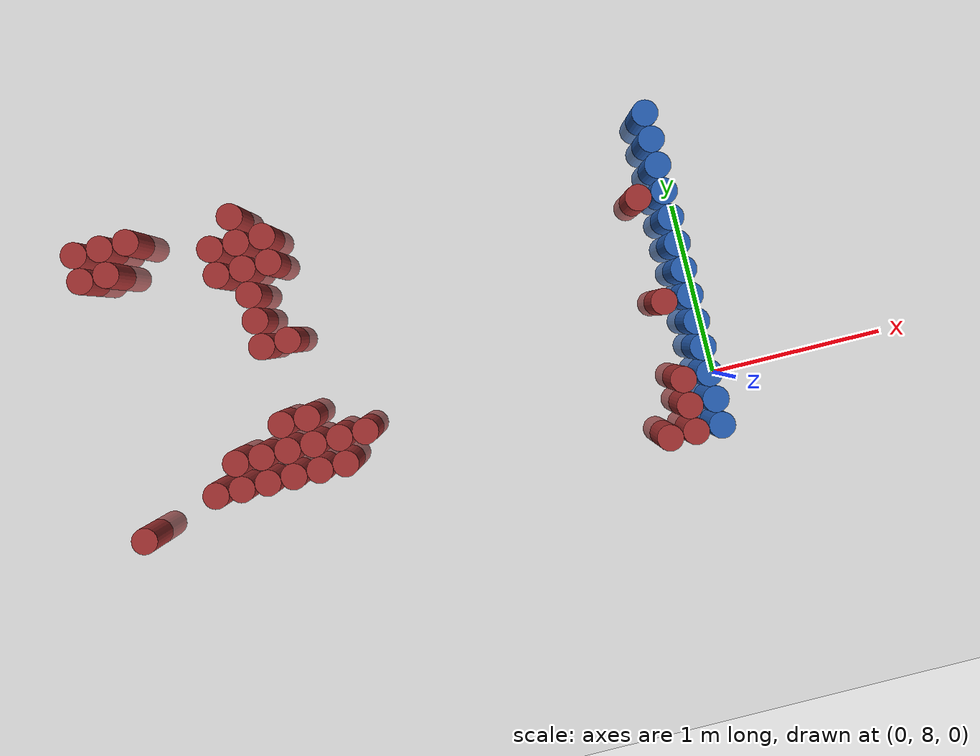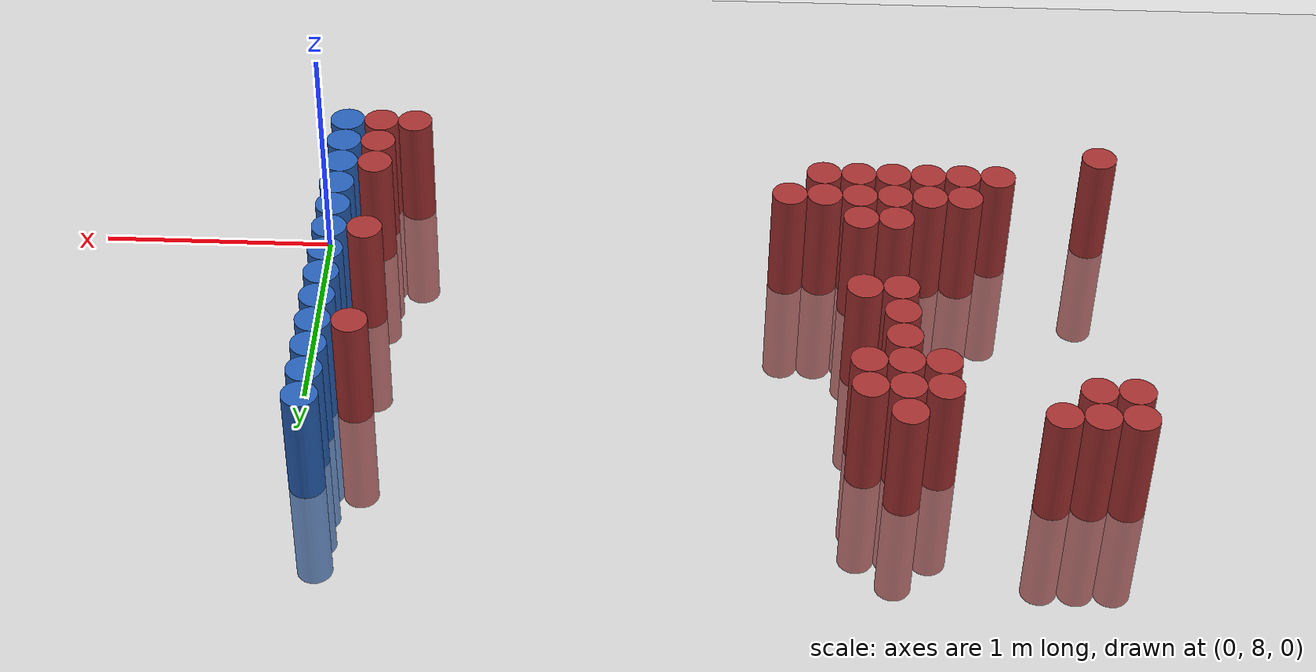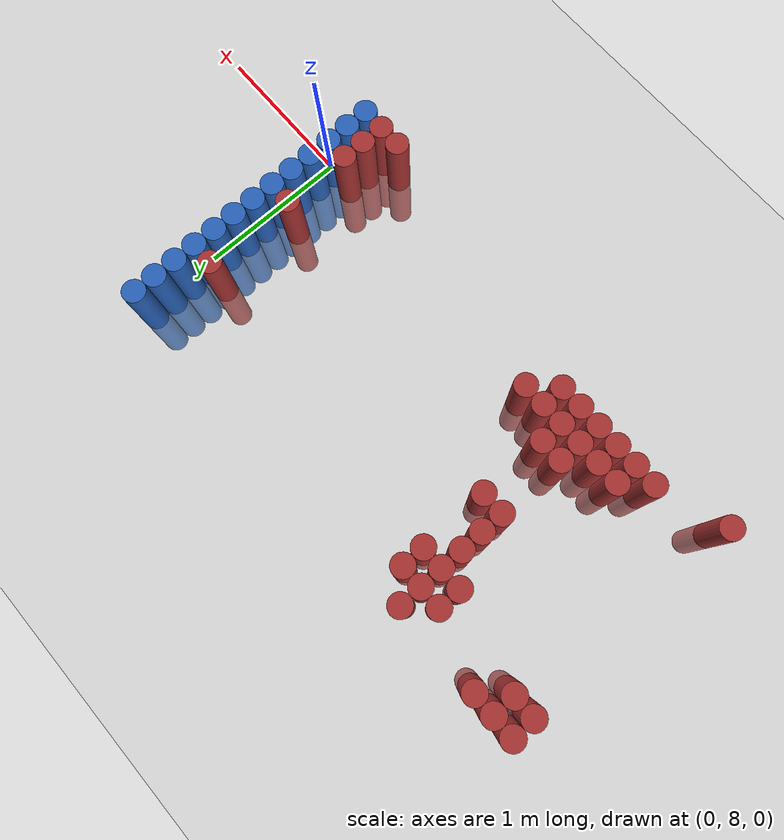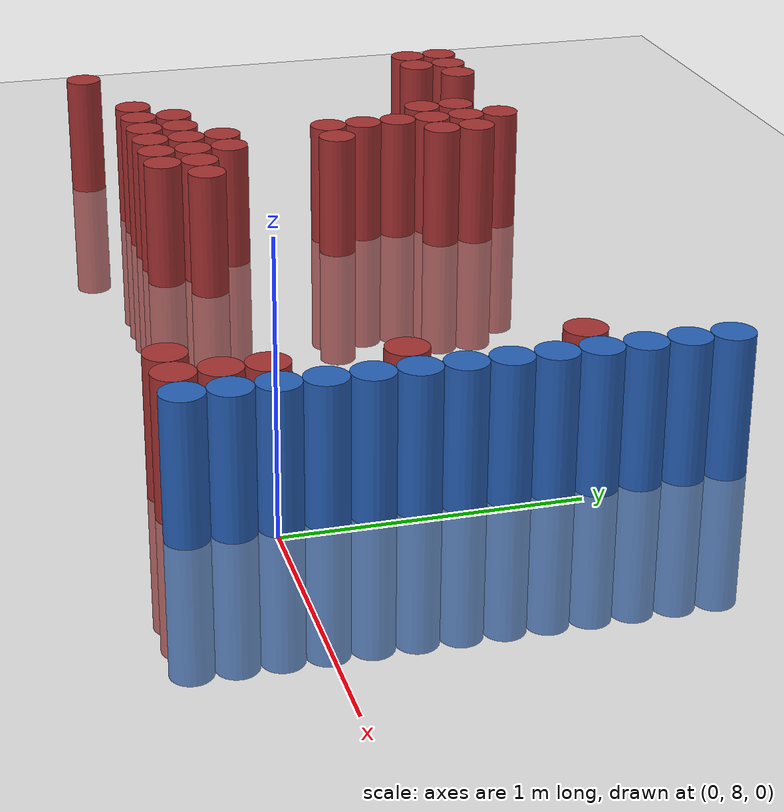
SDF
<sdf version="1.6">
 <world name="default">
  <model name="ground_plane">
   <static>1</static>
   <link name="link">
    <collision name="collision">
     <geometry><plane><normal>0 0 1</normal><size>100 100</size></plane></geometry>
     <surface><friction><ode><mu>100</mu><mu2>50</mu2></ode></friction></surface>
    </collision>
    <visual name="visual">
     <cast_shadows>0</cast_shadows>
     <geometry><plane><normal>0 0 1</normal><size>100 100</size></plane></geometry>
     <material>
      <script><uri>file://media/materials/scripts/gazebo.material</uri><name>Gazebo/Grey</name></script>
     </material>
    </visual>
   </link>
  </model>
  <model name="unit_cylinder_172">
   <static>1</static>
   <pose>-3.375000 7.875000 0.000000 0.000000 0.000000 0.000000</pose>
   <link name="link">
    <inertial>
     <mass>1</mass>
     <inertia><ixx>0.145833</ixx><ixy>0</ixy><ixz>0</ixz><iyy>0.145833</iyy><iyz>0</iyz><izz>0.125</izz></inertia>
    </inertial>
    <collision name="collision">
     <geometry><cylinder><radius>0.075000</radius><length>1</length></cylinder></geometry>
    </collision>
    <visual name="visual">
     <geometry><cylinder><radius>0.075000</radius><length>1</length></cylinder></geometry>
     <material>
      <ambient>0.648000 0.192000 0.192000 1</ambient>
      <diffuse>0.648000 0.192000 0.192000 1</diffuse>
     </material>
     <material>
      <script><name>Gazebo/Grey</name><uri>file://media/materials/scripts/gazebo.material</uri></script>
     </material>
    </visual>
   </link>
  </model>
  <model name="unit_cylinder_173">
   <static>1</static>
   <pose>-3.375000 9.375000 0.000000 0.000000 0.000000 0.000000</pose>
   <link name="link">
    <inertial>
     <mass>1</mass>
     <inertia><ixx>0.145833</ixx><ixy>0</ixy><ixz>0</ixz><iyy>0.145833</iyy><iyz>0</iyz><izz>0.125</izz></inertia>
    </inertial>
    <collision name="collision">
     <geometry><cylinder><radius>0.075000</radius><length>1</length></cylinder></geometry>
    </collision>
    <visual name="visual">
     <geometry><cylinder><radius>0.075000</radius><length>1</length></cylinder></geometry>
     <material>
      <ambient>0.648000 0.192000 0.192000 1</ambient>
      <diffuse>0.648000 0.192000 0.192000 1</diffuse>
     </material>
     <material>
      <script><name>Gazebo/Grey</name><uri>file://media/materials/scripts/gazebo.material</uri></script>
     </material>
    </visual>
   </link>
  </model>
  <model name="unit_cylinder_174">
   <static>1</static>
   <pose>-3.375000 9.525000 0.000000 0.000000 0.000000 0.000000</pose>
   <link name="link">
    <inertial>
     <mass>1</mass>
     <inertia><ixx>0.145833</ixx><ixy>0</ixy><ixz>0</ixz><iyy>0.145833</iyy><iyz>0</iyz><izz>0.125</izz></inertia>
    </inertial>
    <collision name="collision">
     <geometry><cylinder><radius>0.075000</radius><length>1</length></cylinder></geometry>
    </collision>
    <visual name="visual">
     <geometry><cylinder><radius>0.075000</radius><length>1</length></cylinder></geometry>
     <material>
      <ambient>0.648000 0.192000 0.192000 1</ambient>
      <diffuse>0.648000 0.192000 0.192000 1</diffuse>
     </material>
     <material>
      <script><name>Gazebo/Grey</name><uri>file://media/materials/scripts/gazebo.material</uri></script>
     </material>
    </visual>
   </link>
  </model>
  <model name="unit_cylinder_180">
   <static>1</static>
   <pose>-3.225000 9.375000 0.000000 0.000000 0.000000 0.000000</pose>
   <link name="link">
    <inertial>
     <mass>1</mass>
     <inertia><ixx>0.145833</ixx><ixy>0</ixy><ixz>0</ixz><iyy>0.145833</iyy><iyz>0</iyz><izz>0.125</izz></inertia>
    </inertial>
    <collision name="collision">
     <geometry><cylinder><radius>0.075000</radius><length>1</length></cylinder></geometry>
    </collision>
    <visual name="visual">
     <geometry><cylinder><radius>0.075000</radius><length>1</length></cylinder></geometry>
     <material>
      <ambient>0.648000 0.192000 0.192000 1</ambient>
      <diffuse>0.648000 0.192000 0.192000 1</diffuse>
     </material>
     <material>
      <script><name>Gazebo/Grey</name><uri>file://media/materials/scripts/gazebo.material</uri></script>
     </material>
    </visual>
   </link>
  </model>
  <model name="unit_cylinder_181">
   <static>1</static>
   <pose>-3.225000 9.525000 0.000000 0.000000 0.000000 0.000000</pose>
   <link name="link">
    <inertial>
     <mass>1</mass>
     <inertia><ixx>0.145833</ixx><ixy>0</ixy><ixz>0</ixz><iyy>0.145833</iyy><iyz>0</iyz><izz>0.125</izz></inertia>
    </inertial>
    <collision name="collision">
     <geometry><cylinder><radius>0.075000</radius><length>1</length></cylinder></geometry>
    </collision>
    <visual name="visual">
     <geometry><cylinder><radius>0.075000</radius><length>1</length></cylinder></geometry>
     <material>
      <ambient>0.648000 0.192000 0.192000 1</ambient>
      <diffuse>0.648000 0.192000 0.192000 1</diffuse>
     </material>
     <material>
      <script><name>Gazebo/Grey</name><uri>file://media/materials/scripts/gazebo.material</uri></script>
     </material>
    </visual>
   </link>
  </model>
  <model name="unit_cylinder_189">
   <static>1</static>
   <pose>-3.075000 9.525000 0.000000 0.000000 0.000000 0.000000</pose>
   <link name="link">
    <inertial>
     <mass>1</mass>
     <inertia><ixx>0.145833</ixx><ixy>0</ixy><ixz>0</ixz><iyy>0.145833</iyy><iyz>0</iyz><izz>0.125</izz></inertia>
    </inertial>
    <collision name="collision">
     <geometry><cylinder><radius>0.075000</radius><length>1</length></cylinder></geometry>
    </collision>
    <visual name="visual">
     <geometry><cylinder><radius>0.075000</radius><length>1</length></cylinder></geometry>
     <material>
      <ambient>0.648000 0.192000 0.192000 1</ambient>
      <diffuse>0.648000 0.192000 0.192000 1</diffuse>
     </material>
     <material>
      <script><name>Gazebo/Grey</name><uri>file://media/materials/scripts/gazebo.material</uri></script>
     </material>
    </visual>
   </link>
  </model>
  <model name="unit_cylinder_196">
   <static>1</static>
   <pose>-2.925000 8.025000 0.000000 0.000000 0.000000 0.000000</pose>
   <link name="link">
    <inertial>
     <mass>1</mass>
     <inertia><ixx>0.145833</ixx><ixy>0</ixy><ixz>0</ixz><iyy>0.145833</iyy><iyz>0</iyz><izz>0.125</izz></inertia>
    </inertial>
    <collision name="collision">
     <geometry><cylinder><radius>0.075000</radius><length>1</length></cylinder></geometry>
    </collision>
    <visual name="visual">
     <geometry><cylinder><radius>0.075000</radius><length>1</length></cylinder></geometry>
     <material>
      <ambient>0.648000 0.192000 0.192000 1</ambient>
      <diffuse>0.648000 0.192000 0.192000 1</diffuse>
     </material>
     <material>
      <script><name>Gazebo/Grey</name><uri>file://media/materials/scripts/gazebo.material</uri></script>
     </material>
    </visual>
   </link>
  </model>
  <model name="unit_cylinder_202">
   <static>1</static>
   <pose>-2.775000 8.025000 0.000000 0.000000 0.000000 0.000000</pose>
   <link name="link">
    <inertial>
     <mass>1</mass>
     <inertia><ixx>0.145833</ixx><ixy>0</ixy><ixz>0</ixz><iyy>0.145833</iyy><iyz>0</iyz><izz>0.125</izz></inertia>
    </inertial>
    <collision name="collision">
     <geometry><cylinder><radius>0.075000</radius><length>1</length></cylinder></geometry>
    </collision>
    <visual name="visual">
     <geometry><cylinder><radius>0.075000</radius><length>1</length></cylinder></geometry>
     <material>
      <ambient>0.648000 0.192000 0.192000 1</ambient>
      <diffuse>0.648000 0.192000 0.192000 1</diffuse>
     </material>
     <material>
      <script><name>Gazebo/Grey</name><uri>file://media/materials/scripts/gazebo.material</uri></script>
     </material>
    </visual>
   </link>
  </model>
  <model name="unit_cylinder_203">
   <static>1</static>
   <pose>-2.775000 8.175000 0.000000 0.000000 0.000000 0.000000</pose>
   <link name="link">
    <inertial>
     <mass>1</mass>
     <inertia><ixx>0.145833</ixx><ixy>0</ixy><ixz>0</ixz><iyy>0.145833</iyy><iyz>0</iyz><izz>0.125</izz></inertia>
    </inertial>
    <collision name="collision">
     <geometry><cylinder><radius>0.075000</radius><length>1</length></cylinder></geometry>
    </collision>
    <visual name="visual">
     <geometry><cylinder><radius>0.075000</radius><length>1</length></cylinder></geometry>
     <material>
      <ambient>0.648000 0.192000 0.192000 1</ambient>
      <diffuse>0.648000 0.192000 0.192000 1</diffuse>
     </material>
     <material>
      <script><name>Gazebo/Grey</name><uri>file://media/materials/scripts/gazebo.material</uri></script>
     </material>
    </visual>
   </link>
  </model>
  <model name="unit_cylinder_209">
   <static>1</static>
   <pose>-2.625000 8.025000 0.000000 0.000000 0.000000 0.000000</pose>
   <link name="link">
    <inertial>
     <mass>1</mass>
     <inertia><ixx>0.145833</ixx><ixy>0</ixy><ixz>0</ixz><iyy>0.145833</iyy><iyz>0</iyz><izz>0.125</izz></inertia>
    </inertial>
    <collision name="collision">
     <geometry><cylinder><radius>0.075000</radius><length>1</length></cylinder></geometry>
    </collision>
    <visual name="visual">
     <geometry><cylinder><radius>0.075000</radius><length>1</length></cylinder></geometry>
     <material>
      <ambient>0.648000 0.192000 0.192000 1</ambient>
      <diffuse>0.648000 0.192000 0.192000 1</diffuse>
     </material>
     <material>
      <script><name>Gazebo/Grey</name><uri>file://media/materials/scripts/gazebo.material</uri></script>
     </material>
    </visual>
   </link>
  </model>
  <model name="unit_cylinder_210">
   <static>1</static>
   <pose>-2.625000 8.175000 0.000000 0.000000 0.000000 0.000000</pose>
   <link name="link">
    <inertial>
     <mass>1</mass>
     <inertia><ixx>0.145833</ixx><ixy>0</ixy><ixz>0</ixz><iyy>0.145833</iyy><iyz>0</iyz><izz>0.125</izz></inertia>
    </inertial>
    <collision name="collision">
     <geometry><cylinder><radius>0.075000</radius><length>1</length></cylinder></geometry>
    </collision>
    <visual name="visual">
     <geometry><cylinder><radius>0.075000</radius><length>1</length></cylinder></geometry>
     <material>
      <ambient>0.648000 0.192000 0.192000 1</ambient>
      <diffuse>0.648000 0.192000 0.192000 1</diffuse>
     </material>
     <material>
      <script><name>Gazebo/Grey</name><uri>file://media/materials/scripts/gazebo.material</uri></script>
     </material>
    </visual>
   </link>
  </model>
  <model name="unit_cylinder_211">
   <static>1</static>
   <pose>-2.625000 9.225000 0.000000 0.000000 0.000000 0.000000</pose>
   <link name="link">
    <inertial>
     <mass>1</mass>
     <inertia><ixx>0.145833</ixx><ixy>0</ixy><ixz>0</ixz><iyy>0.145833</iyy><iyz>0</iyz><izz>0.125</izz></inertia>
    </inertial>
    <collision name="collision">
     <geometry><cylinder><radius>0.075000</radius><length>1</length></cylinder></geometry>
    </collision>
    <visual name="visual">
     <geometry><cylinder><radius>0.075000</radius><length>1</length></cylinder></geometry>
     <material>
      <ambient>0.648000 0.192000 0.192000 1</ambient>
      <diffuse>0.648000 0.192000 0.192000 1</diffuse>
     </material>
     <material>
      <script><name>Gazebo/Grey</name><uri>file://media/materials/scripts/gazebo.material</uri></script>
     </material>
    </visual>
   </link>
  </model>
  <model name="unit_cylinder_212">
   <static>1</static>
   <pose>-2.625000 9.375000 0.000000 0.000000 0.000000 0.000000</pose>
   <link name="link">
    <inertial>
     <mass>1</mass>
     <inertia><ixx>0.145833</ixx><ixy>0</ixy><ixz>0</ixz><iyy>0.145833</iyy><iyz>0</iyz><izz>0.125</izz></inertia>
    </inertial>
    <collision name="collision">
     <geometry><cylinder><radius>0.075000</radius><length>1</length></cylinder></geometry>
    </collision>
    <visual name="visual">
     <geometry><cylinder><radius>0.075000</radius><length>1</length></cylinder></geometry>
     <material>
      <ambient>0.648000 0.192000 0.192000 1</ambient>
      <diffuse>0.648000 0.192000 0.192000 1</diffuse>
     </material>
     <material>
      <script><name>Gazebo/Grey</name><uri>file://media/materials/scripts/gazebo.material</uri></script>
     </material>
    </visual>
   </link>
  </model>
  <model name="unit_cylinder_217">
   <static>1</static>
   <pose>-2.475000 8.025000 0.000000 0.000000 0.000000 0.000000</pose>
   <link name="link">
    <inertial>
     <mass>1</mass>
     <inertia><ixx>0.145833</ixx><ixy>0</ixy><ixz>0</ixz><iyy>0.145833</iyy><iyz>0</iyz><izz>0.125</izz></inertia>
    </inertial>
    <collision name="collision">
     <geometry><cylinder><radius>0.075000</radius><length>1</length></cylinder></geometry>
    </collision>
    <visual name="visual">
     <geometry><cylinder><radius>0.075000</radius><length>1</length></cylinder></geometry>
     <material>
      <ambient>0.648000 0.192000 0.192000 1</ambient>
      <diffuse>0.648000 0.192000 0.192000 1</diffuse>
     </material>
     <material>
      <script><name>Gazebo/Grey</name><uri>file://media/materials/scripts/gazebo.material</uri></script>
     </material>
    </visual>
   </link>
  </model>
  <model name="unit_cylinder_218">
   <static>1</static>
   <pose>-2.475000 8.175000 0.000000 0.000000 0.000000 0.000000</pose>
   <link name="link">
    <inertial>
     <mass>1</mass>
     <inertia><ixx>0.145833</ixx><ixy>0</ixy><ixz>0</ixz><iyy>0.145833</iyy><iyz>0</iyz><izz>0.125</izz></inertia>
    </inertial>
    <collision name="collision">
     <geometry><cylinder><radius>0.075000</radius><length>1</length></cylinder></geometry>
    </collision>
    <visual name="visual">
     <geometry><cylinder><radius>0.075000</radius><length>1</length></cylinder></geometry>
     <material>
      <ambient>0.648000 0.192000 0.192000 1</ambient>
      <diffuse>0.648000 0.192000 0.192000 1</diffuse>
     </material>
     <material>
      <script><name>Gazebo/Grey</name><uri>file://media/materials/scripts/gazebo.material</uri></script>
     </material>
    </visual>
   </link>
  </model>
  <model name="unit_cylinder_219">
   <static>1</static>
   <pose>-2.475000 8.325000 0.000000 0.000000 0.000000 0.000000</pose>
   <link name="link">
    <inertial>
     <mass>1</mass>
     <inertia><ixx>0.145833</ixx><ixy>0</ixy><ixz>0</ixz><iyy>0.145833</iyy><iyz>0</iyz><izz>0.125</izz></inertia>
    </inertial>
    <collision name="collision">
     <geometry><cylinder><radius>0.075000</radius><length>1</length></cylinder></geometry>
    </collision>
    <visual name="visual">
     <geometry><cylinder><radius>0.075000</radius><length>1</length></cylinder></geometry>
     <material>
      <ambient>0.648000 0.192000 0.192000 1</ambient>
      <diffuse>0.648000 0.192000 0.192000 1</diffuse>
     </material>
     <material>
      <script><name>Gazebo/Grey</name><uri>file://media/materials/scripts/gazebo.material</uri></script>
     </material>
    </visual>
   </link>
  </model>
  <model name="unit_cylinder_220">
   <static>1</static>
   <pose>-2.475000 8.775000 0.000000 0.000000 0.000000 0.000000</pose>
   <link name="link">
    <inertial>
     <mass>1</mass>
     <inertia><ixx>0.145833</ixx><ixy>0</ixy><ixz>0</ixz><iyy>0.145833</iyy><iyz>0</iyz><izz>0.125</izz></inertia>
    </inertial>
    <collision name="collision">
     <geometry><cylinder><radius>0.075000</radius><length>1</length></cylinder></geometry>
    </collision>
    <visual name="visual">
     <geometry><cylinder><radius>0.075000</radius><length>1</length></cylinder></geometry>
     <material>
      <ambient>0.648000 0.192000 0.192000 1</ambient>
      <diffuse>0.648000 0.192000 0.192000 1</diffuse>
     </material>
     <material>
      <script><name>Gazebo/Grey</name><uri>file://media/materials/scripts/gazebo.material</uri></script>
     </material>
    </visual>
   </link>
  </model>
  <model name="unit_cylinder_221">
   <static>1</static>
   <pose>-2.475000 8.925000 0.000000 0.000000 0.000000 0.000000</pose>
   <link name="link">
    <inertial>
     <mass>1</mass>
     <inertia><ixx>0.145833</ixx><ixy>0</ixy><ixz>0</ixz><iyy>0.145833</iyy><iyz>0</iyz><izz>0.125</izz></inertia>
    </inertial>
    <collision name="collision">
     <geometry><cylinder><radius>0.075000</radius><length>1</length></cylinder></geometry>
    </collision>
    <visual name="visual">
     <geometry><cylinder><radius>0.075000</radius><length>1</length></cylinder></geometry>
     <material>
      <ambient>0.648000 0.192000 0.192000 1</ambient>
      <diffuse>0.648000 0.192000 0.192000 1</diffuse>
     </material>
     <material>
      <script><name>Gazebo/Grey</name><uri>file://media/materials/scripts/gazebo.material</uri></script>
     </material>
    </visual>
   </link>
  </model>
  <model name="unit_cylinder_222">
   <static>1</static>
   <pose>-2.475000 9.075000 0.000000 0.000000 0.000000 0.000000</pose>
   <link name="link">
    <inertial>
     <mass>1</mass>
     <inertia><ixx>0.145833</ixx><ixy>0</ixy><ixz>0</ixz><iyy>0.145833</iyy><iyz>0</iyz><izz>0.125</izz></inertia>
    </inertial>
    <collision name="collision">
     <geometry><cylinder><radius>0.075000</radius><length>1</length></cylinder></geometry>
    </collision>
    <visual name="visual">
     <geometry><cylinder><radius>0.075000</radius><length>1</length></cylinder></geometry>
     <material>
      <ambient>0.648000 0.192000 0.192000 1</ambient>
      <diffuse>0.648000 0.192000 0.192000 1</diffuse>
     </material>
     <material>
      <script><name>Gazebo/Grey</name><uri>file://media/materials/scripts/gazebo.material</uri></script>
     </material>
    </visual>
   </link>
  </model>
  <model name="unit_cylinder_223">
   <static>1</static>
   <pose>-2.475000 9.225000 0.000000 0.000000 0.000000 0.000000</pose>
   <link name="link">
    <inertial>
     <mass>1</mass>
     <inertia><ixx>0.145833</ixx><ixy>0</ixy><ixz>0</ixz><iyy>0.145833</iyy><iyz>0</iyz><izz>0.125</izz></inertia>
    </inertial>
    <collision name="collision">
     <geometry><cylinder><radius>0.075000</radius><length>1</length></cylinder></geometry>
    </collision>
    <visual name="visual">
     <geometry><cylinder><radius>0.075000</radius><length>1</length></cylinder></geometry>
     <material>
      <ambient>0.648000 0.192000 0.192000 1</ambient>
      <diffuse>0.648000 0.192000 0.192000 1</diffuse>
     </material>
     <material>
      <script><name>Gazebo/Grey</name><uri>file://media/materials/scripts/gazebo.material</uri></script>
     </material>
    </visual>
   </link>
  </model>
  <model name="unit_cylinder_224">
   <static>1</static>
   <pose>-2.475000 9.375000 0.000000 0.000000 0.000000 0.000000</pose>
   <link name="link">
    <inertial>
     <mass>1</mass>
     <inertia><ixx>0.145833</ixx><ixy>0</ixy><ixz>0</ixz><iyy>0.145833</iyy><iyz>0</iyz><izz>0.125</izz></inertia>
    </inertial>
    <collision name="collision">
     <geometry><cylinder><radius>0.075000</radius><length>1</length></cylinder></geometry>
    </collision>
    <visual name="visual">
     <geometry><cylinder><radius>0.075000</radius><length>1</length></cylinder></geometry>
     <material>
      <ambient>0.648000 0.192000 0.192000 1</ambient>
      <diffuse>0.648000 0.192000 0.192000 1</diffuse>
     </material>
     <material>
      <script><name>Gazebo/Grey</name><uri>file://media/materials/scripts/gazebo.material</uri></script>
     </material>
    </visual>
   </link>
  </model>
  <model name="unit_cylinder_225">
   <static>1</static>
   <pose>-2.475000 9.525000 0.000000 0.000000 0.000000 0.000000</pose>
   <link name="link">
    <inertial>
     <mass>1</mass>
     <inertia><ixx>0.145833</ixx><ixy>0</ixy><ixz>0</ixz><iyy>0.145833</iyy><iyz>0</iyz><izz>0.125</izz></inertia>
    </inertial>
    <collision name="collision">
     <geometry><cylinder><radius>0.075000</radius><length>1</length></cylinder></geometry>
    </collision>
    <visual name="visual">
     <geometry><cylinder><radius>0.075000</radius><length>1</length></cylinder></geometry>
     <material>
      <ambient>0.648000 0.192000 0.192000 1</ambient>
      <diffuse>0.648000 0.192000 0.192000 1</diffuse>
     </material>
     <material>
      <script><name>Gazebo/Grey</name><uri>file://media/materials/scripts/gazebo.material</uri></script>
     </material>
    </visual>
   </link>
  </model>
  <model name="unit_cylinder_229">
   <static>1</static>
   <pose>-2.325000 8.025000 0.000000 0.000000 0.000000 0.000000</pose>
   <link name="link">
    <inertial>
     <mass>1</mass>
     <inertia><ixx>0.145833</ixx><ixy>0</ixy><ixz>0</ixz><iyy>0.145833</iyy><iyz>0</iyz><izz>0.125</izz></inertia>
    </inertial>
    <collision name="collision">
     <geometry><cylinder><radius>0.075000</radius><length>1</length></cylinder></geometry>
    </collision>
    <visual name="visual">
     <geometry><cylinder><radius>0.075000</radius><length>1</length></cylinder></geometry>
     <material>
      <ambient>0.648000 0.192000 0.192000 1</ambient>
      <diffuse>0.648000 0.192000 0.192000 1</diffuse>
     </material>
     <material>
      <script><name>Gazebo/Grey</name><uri>file://media/materials/scripts/gazebo.material</uri></script>
     </material>
    </visual>
   </link>
  </model>
  <model name="unit_cylinder_230">
   <static>1</static>
   <pose>-2.325000 8.175000 0.000000 0.000000 0.000000 0.000000</pose>
   <link name="link">
    <inertial>
     <mass>1</mass>
     <inertia><ixx>0.145833</ixx><ixy>0</ixy><ixz>0</ixz><iyy>0.145833</iyy><iyz>0</iyz><izz>0.125</izz></inertia>
    </inertial>
    <collision name="collision">
     <geometry><cylinder><radius>0.075000</radius><length>1</length></cylinder></geometry>
    </collision>
    <visual name="visual">
     <geometry><cylinder><radius>0.075000</radius><length>1</length></cylinder></geometry>
     <material>
      <ambient>0.648000 0.192000 0.192000 1</ambient>
      <diffuse>0.648000 0.192000 0.192000 1</diffuse>
     </material>
     <material>
      <script><name>Gazebo/Grey</name><uri>file://media/materials/scripts/gazebo.material</uri></script>
     </material>
    </visual>
   </link>
  </model>
  <model name="unit_cylinder_231">
   <static>1</static>
   <pose>-2.325000 8.325000 0.000000 0.000000 0.000000 0.000000</pose>
   <link name="link">
    <inertial>
     <mass>1</mass>
     <inertia><ixx>0.145833</ixx><ixy>0</ixy><ixz>0</ixz><iyy>0.145833</iyy><iyz>0</iyz><izz>0.125</izz></inertia>
    </inertial>
    <collision name="collision">
     <geometry><cylinder><radius>0.075000</radius><length>1</length></cylinder></geometry>
    </collision>
    <visual name="visual">
     <geometry><cylinder><radius>0.075000</radius><length>1</length></cylinder></geometry>
     <material>
      <ambient>0.648000 0.192000 0.192000 1</ambient>
      <diffuse>0.648000 0.192000 0.192000 1</diffuse>
     </material>
     <material>
      <script><name>Gazebo/Grey</name><uri>file://media/materials/scripts/gazebo.material</uri></script>
     </material>
    </visual>
   </link>
  </model>
  <model name="unit_cylinder_232">
   <static>1</static>
   <pose>-2.325000 8.775000 0.000000 0.000000 0.000000 0.000000</pose>
   <link name="link">
    <inertial>
     <mass>1</mass>
     <inertia><ixx>0.145833</ixx><ixy>0</ixy><ixz>0</ixz><iyy>0.145833</iyy><iyz>0</iyz><izz>0.125</izz></inertia>
    </inertial>
    <collision name="collision">
     <geometry><cylinder><radius>0.075000</radius><length>1</length></cylinder></geometry>
    </collision>
    <visual name="visual">
     <geometry><cylinder><radius>0.075000</radius><length>1</length></cylinder></geometry>
     <material>
      <ambient>0.648000 0.192000 0.192000 1</ambient>
      <diffuse>0.648000 0.192000 0.192000 1</diffuse>
     </material>
     <material>
      <script><name>Gazebo/Grey</name><uri>file://media/materials/scripts/gazebo.material</uri></script>
     </material>
    </visual>
   </link>
  </model>
  <model name="unit_cylinder_233">
   <static>1</static>
   <pose>-2.325000 9.225000 0.000000 0.000000 0.000000 0.000000</pose>
   <link name="link">
    <inertial>
     <mass>1</mass>
     <inertia><ixx>0.145833</ixx><ixy>0</ixy><ixz>0</ixz><iyy>0.145833</iyy><iyz>0</iyz><izz>0.125</izz></inertia>
    </inertial>
    <collision name="collision">
     <geometry><cylinder><radius>0.075000</radius><length>1</length></cylinder></geometry>
    </collision>
    <visual name="visual">
     <geometry><cylinder><radius>0.075000</radius><length>1</length></cylinder></geometry>
     <material>
      <ambient>0.648000 0.192000 0.192000 1</ambient>
      <diffuse>0.648000 0.192000 0.192000 1</diffuse>
     </material>
     <material>
      <script><name>Gazebo/Grey</name><uri>file://media/materials/scripts/gazebo.material</uri></script>
     </material>
    </visual>
   </link>
  </model>
  <model name="unit_cylinder_234">
   <static>1</static>
   <pose>-2.325000 9.375000 0.000000 0.000000 0.000000 0.000000</pose>
   <link name="link">
    <inertial>
     <mass>1</mass>
     <inertia><ixx>0.145833</ixx><ixy>0</ixy><ixz>0</ixz><iyy>0.145833</iyy><iyz>0</iyz><izz>0.125</izz></inertia>
    </inertial>
    <collision name="collision">
     <geometry><cylinder><radius>0.075000</radius><length>1</length></cylinder></geometry>
    </collision>
    <visual name="visual">
     <geometry><cylinder><radius>0.075000</radius><length>1</length></cylinder></geometry>
     <material>
      <ambient>0.648000 0.192000 0.192000 1</ambient>
      <diffuse>0.648000 0.192000 0.192000 1</diffuse>
     </material>
     <material>
      <script><name>Gazebo/Grey</name><uri>file://media/materials/scripts/gazebo.material</uri></script>
     </material>
    </visual>
   </link>
  </model>
  <model name="unit_cylinder_239">
   <static>1</static>
   <pose>-2.175000 8.025000 0.000000 0.000000 0.000000 0.000000</pose>
   <link name="link">
    <inertial>
     <mass>1</mass>
     <inertia><ixx>0.145833</ixx><ixy>0</ixy><ixz>0</ixz><iyy>0.145833</iyy><iyz>0</iyz><izz>0.125</izz></inertia>
    </inertial>
    <collision name="collision">
     <geometry><cylinder><radius>0.075000</radius><length>1</length></cylinder></geometry>
    </collision>
    <visual name="visual">
     <geometry><cylinder><radius>0.075000</radius><length>1</length></cylinder></geometry>
     <material>
      <ambient>0.648000 0.192000 0.192000 1</ambient>
      <diffuse>0.648000 0.192000 0.192000 1</diffuse>
     </material>
     <material>
      <script><name>Gazebo/Grey</name><uri>file://media/materials/scripts/gazebo.material</uri></script>
     </material>
    </visual>
   </link>
  </model>
  <model name="unit_cylinder_240">
   <static>1</static>
   <pose>-2.175000 8.175000 0.000000 0.000000 0.000000 0.000000</pose>
   <link name="link">
    <inertial>
     <mass>1</mass>
     <inertia><ixx>0.145833</ixx><ixy>0</ixy><ixz>0</ixz><iyy>0.145833</iyy><iyz>0</iyz><izz>0.125</izz></inertia>
    </inertial>
    <collision name="collision">
     <geometry><cylinder><radius>0.075000</radius><length>1</length></cylinder></geometry>
    </collision>
    <visual name="visual">
     <geometry><cylinder><radius>0.075000</radius><length>1</length></cylinder></geometry>
     <material>
      <ambient>0.648000 0.192000 0.192000 1</ambient>
      <diffuse>0.648000 0.192000 0.192000 1</diffuse>
     </material>
     <material>
      <script><name>Gazebo/Grey</name><uri>file://media/materials/scripts/gazebo.material</uri></script>
     </material>
    </visual>
   </link>
  </model>
  <model name="unit_cylinder_245">
   <static>1</static>
   <pose>-2.025000 8.175000 0.000000 0.000000 0.000000 0.000000</pose>
   <link name="link">
    <inertial>
     <mass>1</mass>
     <inertia><ixx>0.145833</ixx><ixy>0</ixy><ixz>0</ixz><iyy>0.145833</iyy><iyz>0</iyz><izz>0.125</izz></inertia>
    </inertial>
    <collision name="collision">
     <geometry><cylinder><radius>0.075000</radius><length>1</length></cylinder></geometry>
    </collision>
    <visual name="visual">
     <geometry><cylinder><radius>0.075000</radius><length>1</length></cylinder></geometry>
     <material>
      <ambient>0.648000 0.192000 0.192000 1</ambient>
      <diffuse>0.648000 0.192000 0.192000 1</diffuse>
     </material>
     <material>
      <script><name>Gazebo/Grey</name><uri>file://media/materials/scripts/gazebo.material</uri></script>
     </material>
    </visual>
   </link>
  </model>
  <model name="unit_cylinder_256">
   <static>1</static>
   <pose>-0.375000 7.725000 0.000000 0.000000 0.000000 0.000000</pose>
   <link name="link">
    <inertial>
     <mass>1</mass>
     <inertia><ixx>0.145833</ixx><ixy>0</ixy><ixz>0</ixz><iyy>0.145833</iyy><iyz>0</iyz><izz>0.125</izz></inertia>
    </inertial>
    <collision name="collision">
     <geometry><cylinder><radius>0.075000</radius><length>1</length></cylinder></geometry>
    </collision>
    <visual name="visual">
     <geometry><cylinder><radius>0.075000</radius><length>1</length></cylinder></geometry>
     <material>
      <ambient>0.648000 0.192000 0.192000 1</ambient>
      <diffuse>0.648000 0.192000 0.192000 1</diffuse>
     </material>
     <material>
      <script><name>Gazebo/Grey</name><uri>file://media/materials/scripts/gazebo.material</uri></script>
     </material>
    </visual>
   </link>
  </model>
  <model name="unit_cylinder_263">
   <static>1</static>
   <pose>-0.225000 7.725000 0.000000 0.000000 0.000000 0.000000</pose>
   <link name="link">
    <inertial>
     <mass>1</mass>
     <inertia><ixx>0.145833</ixx><ixy>0</ixy><ixz>0</ixz><iyy>0.145833</iyy><iyz>0</iyz><izz>0.125</izz></inertia>
    </inertial>
    <collision name="collision">
     <geometry><cylinder><radius>0.075000</radius><length>1</length></cylinder></geometry>
    </collision>
    <visual name="visual">
     <geometry><cylinder><radius>0.075000</radius><length>1</length></cylinder></geometry>
     <material>
      <ambient>0.648000 0.192000 0.192000 1</ambient>
      <diffuse>0.648000 0.192000 0.192000 1</diffuse>
     </material>
     <material>
      <script><name>Gazebo/Grey</name><uri>file://media/materials/scripts/gazebo.material</uri></script>
     </material>
    </visual>
   </link>
  </model>
  <model name="unit_cylinder_264">
   <static>1</static>
   <pose>-0.225000 7.875000 0.000000 0.000000 0.000000 0.000000</pose>
   <link name="link">
    <inertial>
     <mass>1</mass>
     <inertia><ixx>0.145833</ixx><ixy>0</ixy><ixz>0</ixz><iyy>0.145833</iyy><iyz>0</iyz><izz>0.125</izz></inertia>
    </inertial>
    <collision name="collision">
     <geometry><cylinder><radius>0.075000</radius><length>1</length></cylinder></geometry>
    </collision>
    <visual name="visual">
     <geometry><cylinder><radius>0.075000</radius><length>1</length></cylinder></geometry>
     <material>
      <ambient>0.648000 0.192000 0.192000 1</ambient>
      <diffuse>0.648000 0.192000 0.192000 1</diffuse>
     </material>
     <material>
      <script><name>Gazebo/Grey</name><uri>file://media/materials/scripts/gazebo.material</uri></script>
     </material>
    </visual>
   </link>
  </model>
  <model name="unit_cylinder_265">
   <static>1</static>
   <pose>-0.225000 8.025000 0.000000 0.000000 0.000000 0.000000</pose>
   <link name="link">
    <inertial>
     <mass>1</mass>
     <inertia><ixx>0.145833</ixx><ixy>0</ixy><ixz>0</ixz><iyy>0.145833</iyy><iyz>0</iyz><izz>0.125</izz></inertia>
    </inertial>
    <collision name="collision">
     <geometry><cylinder><radius>0.075000</radius><length>1</length></cylinder></geometry>
    </collision>
    <visual name="visual">
     <geometry><cylinder><radius>0.075000</radius><length>1</length></cylinder></geometry>
     <material>
      <ambient>0.648000 0.192000 0.192000 1</ambient>
      <diffuse>0.648000 0.192000 0.192000 1</diffuse>
     </material>
     <material>
      <script><name>Gazebo/Grey</name><uri>file://media/materials/scripts/gazebo.material</uri></script>
     </material>
    </visual>
   </link>
  </model>
  <model name="unit_cylinder_266">
   <static>1</static>
   <pose>-0.225000 8.475000 0.000000 0.000000 0.000000 0.000000</pose>
   <link name="link">
    <inertial>
     <mass>1</mass>
     <inertia><ixx>0.145833</ixx><ixy>0</ixy><ixz>0</ixz><iyy>0.145833</iyy><iyz>0</iyz><izz>0.125</izz></inertia>
    </inertial>
    <collision name="collision">
     <geometry><cylinder><radius>0.075000</radius><length>1</length></cylinder></geometry>
    </collision>
    <visual name="visual">
     <geometry><cylinder><radius>0.075000</radius><length>1</length></cylinder></geometry>
     <material>
      <ambient>0.648000 0.192000 0.192000 1</ambient>
      <diffuse>0.648000 0.192000 0.192000 1</diffuse>
     </material>
     <material>
      <script><name>Gazebo/Grey</name><uri>file://media/materials/scripts/gazebo.material</uri></script>
     </material>
    </visual>
   </link>
  </model>
  <model name="unit_cylinder_267">
   <static>1</static>
   <pose>-0.225000 9.075000 0.000000 0.000000 0.000000 0.000000</pose>
   <link name="link">
    <inertial>
     <mass>1</mass>
     <inertia><ixx>0.145833</ixx><ixy>0</ixy><ixz>0</ixz><iyy>0.145833</iyy><iyz>0</iyz><izz>0.125</izz></inertia>
    </inertial>
    <collision name="collision">
     <geometry><cylinder><radius>0.075000</radius><length>1</length></cylinder></geometry>
    </collision>
    <visual name="visual">
     <geometry><cylinder><radius>0.075000</radius><length>1</length></cylinder></geometry>
     <material>
      <ambient>0.648000 0.192000 0.192000 1</ambient>
      <diffuse>0.648000 0.192000 0.192000 1</diffuse>
     </material>
     <material>
      <script><name>Gazebo/Grey</name><uri>file://media/materials/scripts/gazebo.material</uri></script>
     </material>
    </visual>
   </link>
  </model>
  <model name="unit_cylinder_285">
   <static>1</static>
   <pose>-0.075000 7.725000 0.000000 0.000000 0.000000 0.000000</pose>
   <link name="link">
    <inertial>
     <mass>1</mass>
     <inertia><ixx>0.145833</ixx><ixy>0</ixy><ixz>0</ixz><iyy>0.145833</iyy><iyz>0</iyz><izz>0.125</izz></inertia>
    </inertial>
    <collision name="collision">
     <geometry><cylinder><radius>0.075000</radius><length>1</length></cylinder></geometry>
    </collision>
    <visual name="visual">
     <geometry><cylinder><radius>0.075000</radius><length>1</length></cylinder></geometry>
     <material>
      <ambient>0.152000 0.379000 0.720000 1</ambient>
      <diffuse>0.152000 0.379000 0.720000 1</diffuse>
     </material>
     <material>
      <script><name>Gazebo/Grey</name><uri>file://media/materials/scripts/gazebo.material</uri></script>
     </material>
    </visual>
   </link>
  </model>
  <model name="unit_cylinder_286">
   <static>1</static>
   <pose>-0.075000 7.875000 0.000000 0.000000 0.000000 0.000000</pose>
   <link name="link">
    <inertial>
     <mass>1</mass>
     <inertia><ixx>0.145833</ixx><ixy>0</ixy><ixz>0</ixz><iyy>0.145833</iyy><iyz>0</iyz><izz>0.125</izz></inertia>
    </inertial>
    <collision name="collision">
     <geometry><cylinder><radius>0.075000</radius><length>1</length></cylinder></geometry>
    </collision>
    <visual name="visual">
     <geometry><cylinder><radius>0.075000</radius><length>1</length></cylinder></geometry>
     <material>
      <ambient>0.152000 0.379000 0.720000 1</ambient>
      <diffuse>0.152000 0.379000 0.720000 1</diffuse>
     </material>
     <material>
      <script><name>Gazebo/Grey</name><uri>file://media/materials/scripts/gazebo.material</uri></script>
     </material>
    </visual>
   </link>
  </model>
  <model name="unit_cylinder_287">
   <static>1</static>
   <pose>-0.075000 8.025000 0.000000 0.000000 0.000000 0.000000</pose>
   <link name="link">
    <inertial>
     <mass>1</mass>
     <inertia><ixx>0.145833</ixx><ixy>0</ixy><ixz>0</ixz><iyy>0.145833</iyy><iyz>0</iyz><izz>0.125</izz></inertia>
    </inertial>
    <collision name="collision">
     <geometry><cylinder><radius>0.075000</radius><length>1</length></cylinder></geometry>
    </collision>
    <visual name="visual">
     <geometry><cylinder><radius>0.075000</radius><length>1</length></cylinder></geometry>
     <material>
      <ambient>0.152000 0.379000 0.720000 1</ambient>
      <diffuse>0.152000 0.379000 0.720000 1</diffuse>
     </material>
     <material>
      <script><name>Gazebo/Grey</name><uri>file://media/materials/scripts/gazebo.material</uri></script>
     </material>
    </visual>
   </link>
  </model>
  <model name="unit_cylinder_288">
   <static>1</static>
   <pose>-0.075000 8.175000 0.000000 0.000000 0.000000 0.000000</pose>
   <link name="link">
    <inertial>
     <mass>1</mass>
     <inertia><ixx>0.145833</ixx><ixy>0</ixy><ixz>0</ixz><iyy>0.145833</iyy><iyz>0</iyz><izz>0.125</izz></inertia>
    </inertial>
    <collision name="collision">
     <geometry><cylinder><radius>0.075000</radius><length>1</length></cylinder></geometry>
    </collision>
    <visual name="visual">
     <geometry><cylinder><radius>0.075000</radius><length>1</length></cylinder></geometry>
     <material>
      <ambient>0.152000 0.379000 0.720000 1</ambient>
      <diffuse>0.152000 0.379000 0.720000 1</diffuse>
     </material>
     <material>
      <script><name>Gazebo/Grey</name><uri>file://media/materials/scripts/gazebo.material</uri></script>
     </material>
    </visual>
   </link>
  </model>
  <model name="unit_cylinder_289">
   <static>1</static>
   <pose>-0.075000 8.325000 0.000000 0.000000 0.000000 0.000000</pose>
   <link name="link">
    <inertial>
     <mass>1</mass>
     <inertia><ixx>0.145833</ixx><ixy>0</ixy><ixz>0</ixz><iyy>0.145833</iyy><iyz>0</iyz><izz>0.125</izz></inertia>
    </inertial>
    <collision name="collision">
     <geometry><cylinder><radius>0.075000</radius><length>1</length></cylinder></geometry>
    </collision>
    <visual name="visual">
     <geometry><cylinder><radius>0.075000</radius><length>1</length></cylinder></geometry>
     <material>
      <ambient>0.152000 0.379000 0.720000 1</ambient>
      <diffuse>0.152000 0.379000 0.720000 1</diffuse>
     </material>
     <material>
      <script><name>Gazebo/Grey</name><uri>file://media/materials/scripts/gazebo.material</uri></script>
     </material>
    </visual>
   </link>
  </model>
  <model name="unit_cylinder_290">
   <static>1</static>
   <pose>-0.075000 8.475000 0.000000 0.000000 0.000000 0.000000</pose>
   <link name="link">
    <inertial>
     <mass>1</mass>
     <inertia><ixx>0.145833</ixx><ixy>0</ixy><ixz>0</ixz><iyy>0.145833</iyy><iyz>0</iyz><izz>0.125</izz></inertia>
    </inertial>
    <collision name="collision">
     <geometry><cylinder><radius>0.075000</radius><length>1</length></cylinder></geometry>
    </collision>
    <visual name="visual">
     <geometry><cylinder><radius>0.075000</radius><length>1</length></cylinder></geometry>
     <material>
      <ambient>0.152000 0.379000 0.720000 1</ambient>
      <diffuse>0.152000 0.379000 0.720000 1</diffuse>
     </material>
     <material>
      <script><name>Gazebo/Grey</name><uri>file://media/materials/scripts/gazebo.material</uri></script>
     </material>
    </visual>
   </link>
  </model>
  <model name="unit_cylinder_291">
   <static>1</static>
   <pose>-0.075000 8.625000 0.000000 0.000000 0.000000 0.000000</pose>
   <link name="link">
    <inertial>
     <mass>1</mass>
     <inertia><ixx>0.145833</ixx><ixy>0</ixy><ixz>0</ixz><iyy>0.145833</iyy><iyz>0</iyz><izz>0.125</izz></inertia>
    </inertial>
    <collision name="collision">
     <geometry><cylinder><radius>0.075000</radius><length>1</length></cylinder></geometry>
    </collision>
    <visual name="visual">
     <geometry><cylinder><radius>0.075000</radius><length>1</length></cylinder></geometry>
     <material>
      <ambient>0.152000 0.379000 0.720000 1</ambient>
      <diffuse>0.152000 0.379000 0.720000 1</diffuse>
     </material>
     <material>
      <script><name>Gazebo/Grey</name><uri>file://media/materials/scripts/gazebo.material</uri></script>
     </material>
    </visual>
   </link>
  </model>
  <model name="unit_cylinder_292">
   <static>1</static>
   <pose>-0.075000 8.775000 0.000000 0.000000 0.000000 0.000000</pose>
   <link name="link">
    <inertial>
     <mass>1</mass>
     <inertia><ixx>0.145833</ixx><ixy>0</ixy><ixz>0</ixz><iyy>0.145833</iyy><iyz>0</iyz><izz>0.125</izz></inertia>
    </inertial>
    <collision name="collision">
     <geometry><cylinder><radius>0.075000</radius><length>1</length></cylinder></geometry>
    </collision>
    <visual name="visual">
     <geometry><cylinder><radius>0.075000</radius><length>1</length></cylinder></geometry>
     <material>
      <ambient>0.152000 0.379000 0.720000 1</ambient>
      <diffuse>0.152000 0.379000 0.720000 1</diffuse>
     </material>
     <material>
      <script><name>Gazebo/Grey</name><uri>file://media/materials/scripts/gazebo.material</uri></script>
     </material>
    </visual>
   </link>
  </model>
  <model name="unit_cylinder_293">
   <static>1</static>
   <pose>-0.075000 8.925000 0.000000 0.000000 0.000000 0.000000</pose>
   <link name="link">
    <inertial>
     <mass>1</mass>
     <inertia><ixx>0.145833</ixx><ixy>0</ixy><ixz>0</ixz><iyy>0.145833</iyy><iyz>0</iyz><izz>0.125</izz></inertia>
    </inertial>
    <collision name="collision">
     <geometry><cylinder><radius>0.075000</radius><length>1</length></cylinder></geometry>
    </collision>
    <visual name="visual">
     <geometry><cylinder><radius>0.075000</radius><length>1</length></cylinder></geometry>
     <material>
      <ambient>0.152000 0.379000 0.720000 1</ambient>
      <diffuse>0.152000 0.379000 0.720000 1</diffuse>
     </material>
     <material>
      <script><name>Gazebo/Grey</name><uri>file://media/materials/scripts/gazebo.material</uri></script>
     </material>
    </visual>
   </link>
  </model>
  <model name="unit_cylinder_294">
   <static>1</static>
   <pose>-0.075000 9.075000 0.000000 0.000000 0.000000 0.000000</pose>
   <link name="link">
    <inertial>
     <mass>1</mass>
     <inertia><ixx>0.145833</ixx><ixy>0</ixy><ixz>0</ixz><iyy>0.145833</iyy><iyz>0</iyz><izz>0.125</izz></inertia>
    </inertial>
    <collision name="collision">
     <geometry><cylinder><radius>0.075000</radius><length>1</length></cylinder></geometry>
    </collision>
    <visual name="visual">
     <geometry><cylinder><radius>0.075000</radius><length>1</length></cylinder></geometry>
     <material>
      <ambient>0.152000 0.379000 0.720000 1</ambient>
      <diffuse>0.152000 0.379000 0.720000 1</diffuse>
     </material>
     <material>
      <script><name>Gazebo/Grey</name><uri>file://media/materials/scripts/gazebo.material</uri></script>
     </material>
    </visual>
   </link>
  </model>
  <model name="unit_cylinder_295">
   <static>1</static>
   <pose>-0.075000 9.225000 0.000000 0.000000 0.000000 0.000000</pose>
   <link name="link">
    <inertial>
     <mass>1</mass>
     <inertia><ixx>0.145833</ixx><ixy>0</ixy><ixz>0</ixz><iyy>0.145833</iyy><iyz>0</iyz><izz>0.125</izz></inertia>
    </inertial>
    <collision name="collision">
     <geometry><cylinder><radius>0.075000</radius><length>1</length></cylinder></geometry>
    </collision>
    <visual name="visual">
     <geometry><cylinder><radius>0.075000</radius><length>1</length></cylinder></geometry>
     <material>
      <ambient>0.152000 0.379000 0.720000 1</ambient>
      <diffuse>0.152000 0.379000 0.720000 1</diffuse>
     </material>
     <material>
      <script><name>Gazebo/Grey</name><uri>file://media/materials/scripts/gazebo.material</uri></script>
     </material>
    </visual>
   </link>
  </model>
  <model name="unit_cylinder_296">
   <static>1</static>
   <pose>-0.075000 9.375000 0.000000 0.000000 0.000000 0.000000</pose>
   <link name="link">
    <inertial>
     <mass>1</mass>
     <inertia><ixx>0.145833</ixx><ixy>0</ixy><ixz>0</ixz><iyy>0.145833</iyy><iyz>0</iyz><izz>0.125</izz></inertia>
    </inertial>
    <collision name="collision">
     <geometry><cylinder><radius>0.075000</radius><length>1</length></cylinder></geometry>
    </collision>
    <visual name="visual">
     <geometry><cylinder><radius>0.075000</radius><length>1</length></cylinder></geometry>
     <material>
      <ambient>0.152000 0.379000 0.720000 1</ambient>
      <diffuse>0.152000 0.379000 0.720000 1</diffuse>
     </material>
     <material>
      <script><name>Gazebo/Grey</name><uri>file://media/materials/scripts/gazebo.material</uri></script>
     </material>
    </visual>
   </link>
  </model>
  <model name="unit_cylinder_297">
   <static>1</static>
   <pose>-0.075000 9.525000 0.000000 0.000000 0.000000 0.000000</pose>
   <link name="link">
    <inertial>
     <mass>1</mass>
     <inertia><ixx>0.145833</ixx><ixy>0</ixy><ixz>0</ixz><iyy>0.145833</iyy><iyz>0</iyz><izz>0.125</izz></inertia>
    </inertial>
    <collision name="collision">
     <geometry><cylinder><radius>0.075000</radius><length>1</length></cylinder></geometry>
    </collision>
    <visual name="visual">
     <geometry><cylinder><radius>0.075000</radius><length>1</length></cylinder></geometry>
     <material>
      <ambient>0.152000 0.379000 0.720000 1</ambient>
      <diffuse>0.152000 0.379000 0.720000 1</diffuse>
     </material>
     <material>
      <script><name>Gazebo/Grey</name><uri>file://media/materials/scripts/gazebo.material</uri></script>
     </material>
    </visual>
   </link>
  </model>
 </world>
</sdf>
